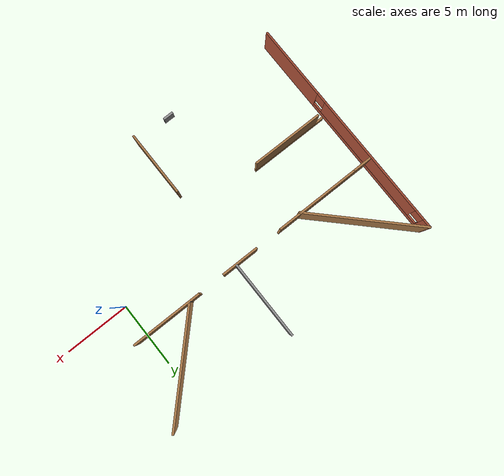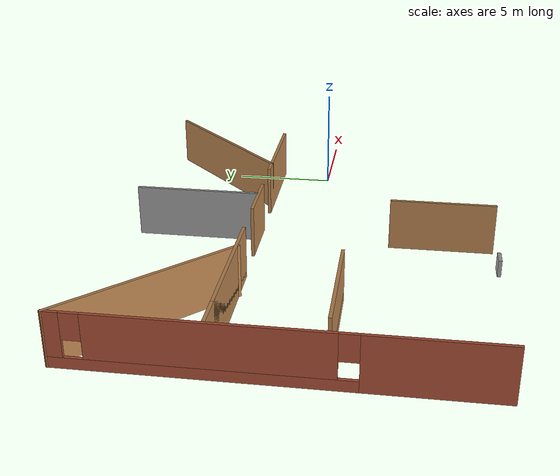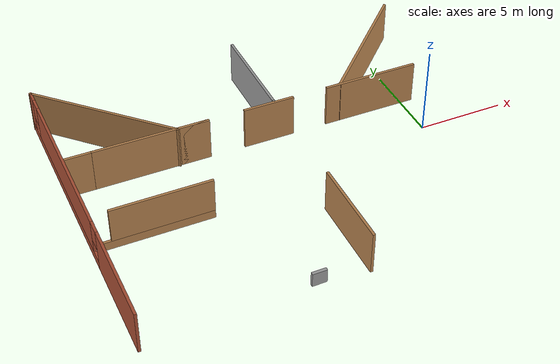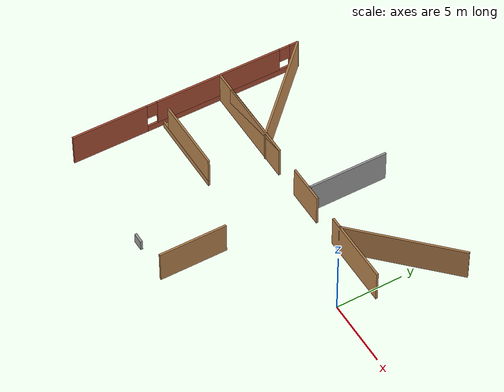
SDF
<sdf version="1.6">
 <model name="mybuilding">
  <link name="Wall_43">
   <pose>-19.7987 0.007562 0 0 -0 1.5708</pose>
   <visual name="Wall_43_Visual_0">
    <pose>-6.02432 0 1.25 0 -0 0</pose>
    <geometry><box><size>5.70136 0.15 2.5</size></box></geometry>
    <material>
     <script><uri>file://media/materials/scripts/gazebo.material</uri><name>Gazebo/Bricks</name></script>
     <ambient>1 1 1 1</ambient>
     <shader type="pixel"/>
     <diffuse>1 1 1 1</diffuse>
     <specular>0.2 0.2 0.2 1</specular>
     <emissive>0 0 0 1</emissive>
    </material>
    <meta><layer>0</layer></meta>
   </visual>
   <visual name="Wall_43_Visual_1">
    <pose>2.85068 0 0.25 0 -0 0</pose>
    <geometry><box><size>12.0486 0.15 0.5</size></box></geometry>
    <material>
     <script><uri>file://media/materials/scripts/gazebo.material</uri><name>Gazebo/Bricks</name></script>
     <ambient>1 1 1 1</ambient>
     <shader type="pixel"/>
     <diffuse>1 1 1 1</diffuse>
     <specular>0.2 0.2 0.2 1</specular>
     <emissive>0 0 0 1</emissive>
    </material>
    <meta><layer>0</layer></meta>
   </visual>
   <visual name="Wall_43_Visual_2">
    <pose>2.47839 0 1.5 0 -0 0</pose>
    <geometry><box><size>9.70406 0.15 2</size></box></geometry>
    <material>
     <script><uri>file://media/materials/scripts/gazebo.material</uri><name>Gazebo/Bricks</name></script>
     <ambient>1 1 1 1</ambient>
     <shader type="pixel"/>
     <diffuse>1 1 1 1</diffuse>
     <specular>0.2 0.2 0.2 1</specular>
     <emissive>0 0 0 1</emissive>
    </material>
    <meta><layer>0</layer></meta>
   </visual>
   <visual name="Wall_43_Visual_3">
    <pose>8.50271 0 1.5 0 -0 0</pose>
    <geometry><box><size>0.744584 0.15 2</size></box></geometry>
    <material>
     <script><uri>file://media/materials/scripts/gazebo.material</uri><name>Gazebo/Bricks</name></script>
     <ambient>1 1 1 1</ambient>
     <shader type="pixel"/>
     <diffuse>1 1 1 1</diffuse>
     <specular>0.2 0.2 0.2 1</specular>
     <emissive>0 0 0 1</emissive>
    </material>
    <meta><layer>0</layer></meta>
   </visual>
   <visual name="Wall_43_Visual_4">
    <pose>-2.77364 0 1.9 0 -0 0</pose>
    <geometry><box><size>0.8 0.15 1.2</size></box></geometry>
    <material>
     <script><uri>file://media/materials/scripts/gazebo.material</uri><name>Gazebo/Bricks</name></script>
     <ambient>1 1 1 1</ambient>
     <shader type="pixel"/>
     <diffuse>1 1 1 1</diffuse>
     <specular>0.2 0.2 0.2 1</specular>
     <emissive>0 0 0 1</emissive>
    </material>
    <meta><layer>0</layer></meta>
   </visual>
   <visual name="Wall_43_Visual_5">
    <pose>7.73042 0 1.9 0 -0 0</pose>
    <geometry><box><size>0.8 0.15 1.2</size></box></geometry>
    <material>
     <script><uri>file://media/materials/scripts/gazebo.material</uri><name>Gazebo/Bricks</name></script>
     <ambient>1 1 1 1</ambient>
     <shader type="pixel"/>
     <diffuse>1 1 1 1</diffuse>
     <specular>0.2 0.2 0.2 1</specular>
     <emissive>0 0 0 1</emissive>
    </material>
    <meta><layer>0</layer></meta>
   </visual>
   <collision name="Wall_43_Collision_0">
    <pose>-6.02432 0 1.25 0 -0 0</pose>
    <geometry><box><size>5.70136 0.15 2.5</size></box></geometry>
    <surface>
     <friction>
      <ode><mu>1</mu><mu2>1</mu2><fdir1>0 0 0</fdir1><slip1>0</slip1><slip2>0</slip2></ode>
      <torsional>
       <coefficient>1</coefficient>
       <patch_radius>0</patch_radius>
       <surface_radius>0</surface_radius>
       <use_patch_radius>1</use_patch_radius>
       <ode><slip>0</slip></ode>
      </torsional>
     </friction>
     <bounce><restitution_coefficient>0</restitution_coefficient><threshold>1e+06</threshold></bounce>
     <contact>
      <collide_without_contact>0</collide_without_contact>
      <collide_without_contact_bitmask>1</collide_without_contact_bitmask>
      <collide_bitmask>1</collide_bitmask>
      <ode>
       <soft_cfm>0</soft_cfm>
       <soft_erp>0.2</soft_erp>
       <kp>1e+13</kp>
       <kd>1</kd>
       <max_vel>0.01</max_vel>
       <min_depth>0</min_depth>
      </ode>
      <bullet>
       <split_impulse>1</split_impulse>
       <split_impulse_penetration_threshold>-0.01</split_impulse_penetration_threshold>
       <soft_cfm>0</soft_cfm>
       <soft_erp>0.2</soft_erp>
       <kp>1e+13</kp>
       <kd>1</kd>
      </bullet>
     </contact>
    </surface>
   </collision>
   <collision name="Wall_43_Collision_1">
    <pose>2.85068 0 0.25 0 -0 0</pose>
    <geometry><box><size>12.0486 0.15 0.5</size></box></geometry>
    <surface>
     <friction>
      <ode><mu>1</mu><mu2>1</mu2><fdir1>0 0 0</fdir1><slip1>0</slip1><slip2>0</slip2></ode>
      <torsional>
       <coefficient>1</coefficient>
       <patch_radius>0</patch_radius>
       <surface_radius>0</surface_radius>
       <use_patch_radius>1</use_patch_radius>
       <ode><slip>0</slip></ode>
      </torsional>
     </friction>
     <bounce><restitution_coefficient>0</restitution_coefficient><threshold>1e+06</threshold></bounce>
     <contact>
      <collide_without_contact>0</collide_without_contact>
      <collide_without_contact_bitmask>1</collide_without_contact_bitmask>
      <collide_bitmask>1</collide_bitmask>
      <ode>
       <soft_cfm>0</soft_cfm>
       <soft_erp>0.2</soft_erp>
       <kp>1e+13</kp>
       <kd>1</kd>
       <max_vel>0.01</max_vel>
       <min_depth>0</min_depth>
      </ode>
      <bullet>
       <split_impulse>1</split_impulse>
       <split_impulse_penetration_threshold>-0.01</split_impulse_penetration_threshold>
       <soft_cfm>0</soft_cfm>
       <soft_erp>0.2</soft_erp>
       <kp>1e+13</kp>
       <kd>1</kd>
      </bullet>
     </contact>
    </surface>
   </collision>
   <collision name="Wall_43_Collision_2">
    <pose>2.47839 0 1.5 0 -0 0</pose>
    <geometry><box><size>9.70406 0.15 2</size></box></geometry>
    <surface>
     <friction>
      <ode><mu>1</mu><mu2>1</mu2><fdir1>0 0 0</fdir1><slip1>0</slip1><slip2>0</slip2></ode>
      <torsional>
       <coefficient>1</coefficient>
       <patch_radius>0</patch_radius>
       <surface_radius>0</surface_radius>
       <use_patch_radius>1</use_patch_radius>
       <ode><slip>0</slip></ode>
      </torsional>
     </friction>
     <bounce><restitution_coefficient>0</restitution_coefficient><threshold>1e+06</threshold></bounce>
     <contact>
      <collide_without_contact>0</collide_without_contact>
      <collide_without_contact_bitmask>1</collide_without_contact_bitmask>
      <collide_bitmask>1</collide_bitmask>
      <ode>
       <soft_cfm>0</soft_cfm>
       <soft_erp>0.2</soft_erp>
       <kp>1e+13</kp>
       <kd>1</kd>
       <max_vel>0.01</max_vel>
       <min_depth>0</min_depth>
      </ode>
      <bullet>
       <split_impulse>1</split_impulse>
       <split_impulse_penetration_threshold>-0.01</split_impulse_penetration_threshold>
       <soft_cfm>0</soft_cfm>
       <soft_erp>0.2</soft_erp>
       <kp>1e+13</kp>
       <kd>1</kd>
      </bullet>
     </contact>
    </surface>
   </collision>
   <collision name="Wall_43_Collision_3">
    <pose>8.50271 0 1.5 0 -0 0</pose>
    <geometry><box><size>0.744584 0.15 2</size></box></geometry>
    <surface>
     <friction>
      <ode><mu>1</mu><mu2>1</mu2><fdir1>0 0 0</fdir1><slip1>0</slip1><slip2>0</slip2></ode>
      <torsional>
       <coefficient>1</coefficient>
       <patch_radius>0</patch_radius>
       <surface_radius>0</surface_radius>
       <use_patch_radius>1</use_patch_radius>
       <ode><slip>0</slip></ode>
      </torsional>
     </friction>
     <bounce><restitution_coefficient>0</restitution_coefficient><threshold>1e+06</threshold></bounce>
     <contact>
      <collide_without_contact>0</collide_without_contact>
      <collide_without_contact_bitmask>1</collide_without_contact_bitmask>
      <collide_bitmask>1</collide_bitmask>
      <ode>
       <soft_cfm>0</soft_cfm>
       <soft_erp>0.2</soft_erp>
       <kp>1e+13</kp>
       <kd>1</kd>
       <max_vel>0.01</max_vel>
       <min_depth>0</min_depth>
      </ode>
      <bullet>
       <split_impulse>1</split_impulse>
       <split_impulse_penetration_threshold>-0.01</split_impulse_penetration_threshold>
       <soft_cfm>0</soft_cfm>
       <soft_erp>0.2</soft_erp>
       <kp>1e+13</kp>
       <kd>1</kd>
      </bullet>
     </contact>
    </surface>
   </collision>
   <collision name="Wall_43_Collision_4">
    <pose>-2.77364 0 1.9 0 -0 0</pose>
    <geometry><box><size>0.8 0.15 1.2</size></box></geometry>
    <surface>
     <friction>
      <ode><mu>1</mu><mu2>1</mu2><fdir1>0 0 0</fdir1><slip1>0</slip1><slip2>0</slip2></ode>
      <torsional>
       <coefficient>1</coefficient>
       <patch_radius>0</patch_radius>
       <surface_radius>0</surface_radius>
       <use_patch_radius>1</use_patch_radius>
       <ode><slip>0</slip></ode>
      </torsional>
     </friction>
     <bounce><restitution_coefficient>0</restitution_coefficient><threshold>1e+06</threshold></bounce>
     <contact>
      <collide_without_contact>0</collide_without_contact>
      <collide_without_contact_bitmask>1</collide_without_contact_bitmask>
      <collide_bitmask>1</collide_bitmask>
      <ode>
       <soft_cfm>0</soft_cfm>
       <soft_erp>0.2</soft_erp>
       <kp>1e+13</kp>
       <kd>1</kd>
       <max_vel>0.01</max_vel>
       <min_depth>0</min_depth>
      </ode>
      <bullet>
       <split_impulse>1</split_impulse>
       <split_impulse_penetration_threshold>-0.01</split_impulse_penetration_threshold>
       <soft_cfm>0</soft_cfm>
       <soft_erp>0.2</soft_erp>
       <kp>1e+13</kp>
       <kd>1</kd>
      </bullet>
     </contact>
    </surface>
   </collision>
   <collision name="Wall_43_Collision_5">
    <pose>7.73042 0 1.9 0 -0 0</pose>
    <geometry><box><size>0.8 0.15 1.2</size></box></geometry>
    <surface>
     <friction>
      <ode><mu>1</mu><mu2>1</mu2><fdir1>0 0 0</fdir1><slip1>0</slip1><slip2>0</slip2></ode>
      <torsional>
       <coefficient>1</coefficient>
       <patch_radius>0</patch_radius>
       <surface_radius>0</surface_radius>
       <use_patch_radius>1</use_patch_radius>
       <ode><slip>0</slip></ode>
      </torsional>
     </friction>
     <bounce><restitution_coefficient>0</restitution_coefficient><threshold>1e+06</threshold></bounce>
     <contact>
      <collide_without_contact>0</collide_without_contact>
      <collide_without_contact_bitmask>1</collide_without_contact_bitmask>
      <collide_bitmask>1</collide_bitmask>
      <ode>
       <soft_cfm>0</soft_cfm>
       <soft_erp>0.2</soft_erp>
       <kp>1e+13</kp>
       <kd>1</kd>
       <max_vel>0.01</max_vel>
       <min_depth>0</min_depth>
      </ode>
      <bullet>
       <split_impulse>1</split_impulse>
       <split_impulse_penetration_threshold>-0.01</split_impulse_penetration_threshold>
       <soft_cfm>0</soft_cfm>
       <soft_erp>0.2</soft_erp>
       <kp>1e+13</kp>
       <kd>1</kd>
      </bullet>
     </contact>
    </surface>
   </collision>
  </link>
  <link name="Wall_59">
   <pose>-7.88431 -6.2675 0 0 0 -1.5708</pose>
   <visual name="Wall_59_Visual">
    <pose>0 0 1.25 0 -0 0</pose>
    <geometry><box><size>5 0.15 2.5</size></box></geometry>
    <material>
     <script><uri>file://media/materials/scripts/gazebo.material</uri><name>Gazebo/Wood</name></script>
     <ambient>1 1 1 1</ambient>
     <shader type="pixel"/>
     <diffuse>1 1 1 1</diffuse>
     <specular>0.2 0.2 0.2 1</specular>
     <emissive>0 0 0 1</emissive>
    </material>
    <meta><layer>0</layer></meta>
   </visual>
   <collision name="Wall_59_Collision">
    <pose>0 0 1.25 0 -0 0</pose>
    <geometry><box><size>5 0.15 2.5</size></box></geometry>
    <surface>
     <friction>
      <ode><mu>1</mu><mu2>1</mu2><fdir1>0 0 0</fdir1><slip1>0</slip1><slip2>0</slip2></ode>
      <torsional>
       <coefficient>1</coefficient>
       <patch_radius>0</patch_radius>
       <surface_radius>0</surface_radius>
       <use_patch_radius>1</use_patch_radius>
       <ode><slip>0</slip></ode>
      </torsional>
     </friction>
     <bounce><restitution_coefficient>0</restitution_coefficient><threshold>1e+06</threshold></bounce>
     <contact>
      <collide_without_contact>0</collide_without_contact>
      <collide_without_contact_bitmask>1</collide_without_contact_bitmask>
      <collide_bitmask>1</collide_bitmask>
      <ode>
       <soft_cfm>0</soft_cfm>
       <soft_erp>0.2</soft_erp>
       <kp>1e+13</kp>
       <kd>1</kd>
       <max_vel>0.01</max_vel>
       <min_depth>0</min_depth>
      </ode>
      <bullet>
       <split_impulse>1</split_impulse>
       <split_impulse_penetration_threshold>-0.01</split_impulse_penetration_threshold>
       <soft_cfm>0</soft_cfm>
       <soft_erp>0.2</soft_erp>
       <kp>1e+13</kp>
       <kd>1</kd>
      </bullet>
     </contact>
    </surface>
   </collision>
  </link>
  <link name="Wall_61">
   <pose>-8.92552 2.61359 0 0 -0 0</pose>
   <visual name="Wall_61_Visual_0">
    <pose>-6.84274 0 1.25 0 -0 0</pose>
    <geometry><box><size>8.06453 0.15 2.5</size></box></geometry>
    <material>
     <script><uri>file://media/materials/scripts/gazebo.material</uri><name>Gazebo/Wood</name></script>
     <ambient>1 1 1 1</ambient>
     <shader type="pixel"/>
     <diffuse>1 1 1 1</diffuse>
     <specular>0.2 0.2 0.2 1</specular>
     <emissive>0 0 0 1</emissive>
    </material>
    <meta><layer>0</layer></meta>
   </visual>
   <visual name="Wall_61_Visual_1">
    <pose>-6.07805 0 1.25 0 -0 0</pose>
    <geometry><box><size>6.53515 0.15 2.5</size></box></geometry>
    <material>
     <script><uri>file://media/materials/scripts/gazebo.material</uri><name>Gazebo/Wood</name></script>
     <ambient>1 1 1 1</ambient>
     <shader type="pixel"/>
     <diffuse>1 1 1 1</diffuse>
     <specular>0.2 0.2 0.2 1</specular>
     <emissive>0 0 0 1</emissive>
    </material>
    <meta><layer>0</layer></meta>
   </visual>
   <visual name="Wall_61_Visual_2">
    <pose>0.654036 0 1.25 0 -0 0</pose>
    <geometry><box><size>2.92902 0.15 2.5</size></box></geometry>
    <material>
     <script><uri>file://media/materials/scripts/gazebo.material</uri><name>Gazebo/Wood</name></script>
     <ambient>1 1 1 1</ambient>
     <shader type="pixel"/>
     <diffuse>1 1 1 1</diffuse>
     <specular>0.2 0.2 0.2 1</specular>
     <emissive>0 0 0 1</emissive>
    </material>
    <meta><layer>0</layer></meta>
   </visual>
   <visual name="Wall_61_Visual_3">
    <pose>6.87507 0 1.25 0 -0 0</pose>
    <geometry><box><size>5.51304 0.15 2.5</size></box></geometry>
    <material>
     <script><uri>file://media/materials/scripts/gazebo.material</uri><name>Gazebo/Wood</name></script>
     <ambient>1 1 1 1</ambient>
     <shader type="pixel"/>
     <diffuse>1 1 1 1</diffuse>
     <specular>0.2 0.2 0.2 1</specular>
     <emissive>0 0 0 1</emissive>
    </material>
    <meta><layer>0</layer></meta>
   </visual>
   <collision name="Wall_61_Collision_1">
    <pose>-6.07805 0 1.25 0 -0 0</pose>
    <geometry><box><size>6.53515 0.15 2.5</size></box></geometry>
    <surface>
     <friction>
      <ode><mu>1</mu><mu2>1</mu2><fdir1>0 0 0</fdir1><slip1>0</slip1><slip2>0</slip2></ode>
      <torsional>
       <coefficient>1</coefficient>
       <patch_radius>0</patch_radius>
       <surface_radius>0</surface_radius>
       <use_patch_radius>1</use_patch_radius>
       <ode><slip>0</slip></ode>
      </torsional>
     </friction>
     <bounce><restitution_coefficient>0</restitution_coefficient><threshold>1e+06</threshold></bounce>
     <contact>
      <collide_without_contact>0</collide_without_contact>
      <collide_without_contact_bitmask>1</collide_without_contact_bitmask>
      <collide_bitmask>1</collide_bitmask>
      <ode>
       <soft_cfm>0</soft_cfm>
       <soft_erp>0.2</soft_erp>
       <kp>1e+13</kp>
       <kd>1</kd>
       <max_vel>0.01</max_vel>
       <min_depth>0</min_depth>
      </ode>
      <bullet>
       <split_impulse>1</split_impulse>
       <split_impulse_penetration_threshold>-0.01</split_impulse_penetration_threshold>
       <soft_cfm>0</soft_cfm>
       <soft_erp>0.2</soft_erp>
       <kp>1e+13</kp>
       <kd>1</kd>
      </bullet>
     </contact>
    </surface>
   </collision>
   <collision name="Wall_61_Collision_0">
    <pose>-6.84274 0 1.25 0 -0 0</pose>
    <geometry><box><size>8.06453 0.15 2.5</size></box></geometry>
    <surface>
     <friction>
      <ode><mu>1</mu><mu2>1</mu2><fdir1>0 0 0</fdir1><slip1>0</slip1><slip2>0</slip2></ode>
      <torsional>
       <coefficient>1</coefficient>
       <patch_radius>0</patch_radius>
       <surface_radius>0</surface_radius>
       <use_patch_radius>1</use_patch_radius>
       <ode><slip>0</slip></ode>
      </torsional>
     </friction>
     <bounce><restitution_coefficient>0</restitution_coefficient><threshold>1e+06</threshold></bounce>
     <contact>
      <collide_without_contact>0</collide_without_contact>
      <collide_without_contact_bitmask>1</collide_without_contact_bitmask>
      <collide_bitmask>1</collide_bitmask>
      <ode>
       <soft_cfm>0</soft_cfm>
       <soft_erp>0.2</soft_erp>
       <kp>1e+13</kp>
       <kd>1</kd>
       <max_vel>0.01</max_vel>
       <min_depth>0</min_depth>
      </ode>
      <bullet>
       <split_impulse>1</split_impulse>
       <split_impulse_penetration_threshold>-0.01</split_impulse_penetration_threshold>
       <soft_cfm>0</soft_cfm>
       <soft_erp>0.2</soft_erp>
       <kp>1e+13</kp>
       <kd>1</kd>
      </bullet>
     </contact>
    </surface>
   </collision>
   <collision name="Wall_61_Collision_2">
    <pose>0.654036 0 1.25 0 -0 0</pose>
    <geometry><box><size>2.92902 0.15 2.5</size></box></geometry>
    <surface>
     <friction>
      <ode><mu>1</mu><mu2>1</mu2><fdir1>0 0 0</fdir1><slip1>0</slip1><slip2>0</slip2></ode>
      <torsional>
       <coefficient>1</coefficient>
       <patch_radius>0</patch_radius>
       <surface_radius>0</surface_radius>
       <use_patch_radius>1</use_patch_radius>
       <ode><slip>0</slip></ode>
      </torsional>
     </friction>
     <bounce><restitution_coefficient>0</restitution_coefficient><threshold>1e+06</threshold></bounce>
     <contact>
      <collide_without_contact>0</collide_without_contact>
      <collide_without_contact_bitmask>1</collide_without_contact_bitmask>
      <collide_bitmask>1</collide_bitmask>
      <ode>
       <soft_cfm>0</soft_cfm>
       <soft_erp>0.2</soft_erp>
       <kp>1e+13</kp>
       <kd>1</kd>
       <max_vel>0.01</max_vel>
       <min_depth>0</min_depth>
      </ode>
      <bullet>
       <split_impulse>1</split_impulse>
       <split_impulse_penetration_threshold>-0.01</split_impulse_penetration_threshold>
       <soft_cfm>0</soft_cfm>
       <soft_erp>0.2</soft_erp>
       <kp>1e+13</kp>
       <kd>1</kd>
      </bullet>
     </contact>
    </surface>
   </collision>
   <collision name="Wall_61_Collision_3">
    <pose>6.87507 0 1.25 0 -0 0</pose>
    <geometry><box><size>5.51304 0.15 2.5</size></box></geometry>
    <surface>
     <friction>
      <ode><mu>1</mu><mu2>1</mu2><fdir1>0 0 0</fdir1><slip1>0</slip1><slip2>0</slip2></ode>
      <torsional>
       <coefficient>1</coefficient>
       <patch_radius>0</patch_radius>
       <surface_radius>0</surface_radius>
       <use_patch_radius>1</use_patch_radius>
       <ode><slip>0</slip></ode>
      </torsional>
     </friction>
     <bounce><restitution_coefficient>0</restitution_coefficient><threshold>1e+06</threshold></bounce>
     <contact>
      <collide_without_contact>0</collide_without_contact>
      <collide_without_contact_bitmask>1</collide_without_contact_bitmask>
      <collide_bitmask>1</collide_bitmask>
      <ode>
       <soft_cfm>0</soft_cfm>
       <soft_erp>0.2</soft_erp>
       <kp>1e+13</kp>
       <kd>1</kd>
       <max_vel>0.01</max_vel>
       <min_depth>0</min_depth>
      </ode>
      <bullet>
       <split_impulse>1</split_impulse>
       <split_impulse_penetration_threshold>-0.01</split_impulse_penetration_threshold>
       <soft_cfm>0</soft_cfm>
       <soft_erp>0.2</soft_erp>
       <kp>1e+13</kp>
       <kd>1</kd>
      </bullet>
     </contact>
    </surface>
   </collision>
  </link>
  <link name="Wall_64">
   <pose>-16.6698 5.67861 0 0 0 -0.785398</pose>
   <visual name="Wall_64_Visual">
    <pose>0 0 1.25 0 -0 0</pose>
    <geometry><box><size>9 0.15 2.5</size></box></geometry>
    <material>
     <script><uri>file://media/materials/scripts/gazebo.material</uri><name>Gazebo/Wood</name></script>
     <ambient>1 1 1 1</ambient>
     <shader type="pixel"/>
     <diffuse>1 1 1 1</diffuse>
     <specular>0.2 0.2 0.2 1</specular>
     <emissive>0 0 0 1</emissive>
    </material>
    <meta><layer>0</layer></meta>
   </visual>
   <collision name="Wall_64_Collision">
    <pose>0 0 1.25 0 -0 0</pose>
    <geometry><box><size>9 0.15 2.5</size></box></geometry>
    <surface>
     <friction>
      <ode><mu>1</mu><mu2>1</mu2><fdir1>0 0 0</fdir1><slip1>0</slip1><slip2>0</slip2></ode>
      <torsional>
       <coefficient>1</coefficient>
       <patch_radius>0</patch_radius>
       <surface_radius>0</surface_radius>
       <use_patch_radius>1</use_patch_radius>
       <ode><slip>0</slip></ode>
      </torsional>
     </friction>
     <bounce><restitution_coefficient>0</restitution_coefficient><threshold>1e+06</threshold></bounce>
     <contact>
      <collide_without_contact>0</collide_without_contact>
      <collide_without_contact_bitmask>1</collide_without_contact_bitmask>
      <collide_bitmask>1</collide_bitmask>
      <ode>
       <soft_cfm>0</soft_cfm>
       <soft_erp>0.2</soft_erp>
       <kp>1e+13</kp>
       <kd>1</kd>
       <max_vel>0.01</max_vel>
       <min_depth>0</min_depth>
      </ode>
      <bullet>
       <split_impulse>1</split_impulse>
       <split_impulse_penetration_threshold>-0.01</split_impulse_penetration_threshold>
       <soft_cfm>0</soft_cfm>
       <soft_erp>0.2</soft_erp>
       <kp>1e+13</kp>
       <kd>1</kd>
      </bullet>
     </contact>
    </surface>
   </collision>
  </link>
  <link name="Wall_70">
   <pose>-0.903867 5.67115 0 0 0 -2.35619</pose>
   <visual name="Wall_70_Visual">
    <pose>0 0 1.25 0 -0 0</pose>
    <geometry><box><size>8.75 0.15 2.5</size></box></geometry>
    <material>
     <script><uri>file://media/materials/scripts/gazebo.material</uri><name>Gazebo/Wood</name></script>
     <ambient>1 1 1 1</ambient>
     <shader type="pixel"/>
     <diffuse>1 1 1 1</diffuse>
     <specular>0.2 0.2 0.2 1</specular>
     <emissive>0 0 0 1</emissive>
    </material>
    <meta><layer>0</layer></meta>
   </visual>
   <collision name="Wall_70_Collision">
    <pose>0 0 1.25 0 -0 0</pose>
    <geometry><box><size>8.75 0.15 2.5</size></box></geometry>
    <surface>
     <friction>
      <ode><mu>1</mu><mu2>1</mu2><fdir1>0 0 0</fdir1><slip1>0</slip1><slip2>0</slip2></ode>
      <torsional>
       <coefficient>1</coefficient>
       <patch_radius>0</patch_radius>
       <surface_radius>0</surface_radius>
       <use_patch_radius>1</use_patch_radius>
       <ode><slip>0</slip></ode>
      </torsional>
     </friction>
     <bounce><restitution_coefficient>0</restitution_coefficient><threshold>1e+06</threshold></bounce>
     <contact>
      <collide_without_contact>0</collide_without_contact>
      <collide_without_contact_bitmask>1</collide_without_contact_bitmask>
      <collide_bitmask>1</collide_bitmask>
      <ode>
       <soft_cfm>0</soft_cfm>
       <soft_erp>0.2</soft_erp>
       <kp>1e+13</kp>
       <kd>1</kd>
       <max_vel>0.01</max_vel>
       <min_depth>0</min_depth>
      </ode>
      <bullet>
       <split_impulse>1</split_impulse>
       <split_impulse_penetration_threshold>-0.01</split_impulse_penetration_threshold>
       <soft_cfm>0</soft_cfm>
       <soft_erp>0.2</soft_erp>
       <kp>1e+13</kp>
       <kd>1</kd>
      </bullet>
     </contact>
    </surface>
   </collision>
  </link>
  <link name="Wall_71">
   <pose>-3.93943 2.63059 0 0 -0 0</pose>
   <visual name="Wall_71_Visual">
    <pose>0 0 1.25 0 -0 0</pose>
    <geometry><box><size>0.16 0.15 2.5</size></box></geometry>
    <material>
     <script><uri>file://media/materials/scripts/gazebo.material</uri><name>Gazebo/Grey</name></script>
     <ambient>1 1 1 1</ambient>
     <shader type="pixel"/>
     <diffuse>0.7 0.7 0.7 1</diffuse>
     <specular>0.01 0.01 0.01 1</specular>
     <emissive>0 0 0 1</emissive>
    </material>
    <meta><layer>0</layer></meta>
   </visual>
   <collision name="Wall_71_Collision">
    <pose>0 0 1.25 0 -0 0</pose>
    <geometry><box><size>0.16 0.15 2.5</size></box></geometry>
    <surface>
     <friction>
      <ode><mu>1</mu><mu2>1</mu2><fdir1>0 0 0</fdir1><slip1>0</slip1><slip2>0</slip2></ode>
      <torsional>
       <coefficient>1</coefficient>
       <patch_radius>0</patch_radius>
       <surface_radius>0</surface_radius>
       <use_patch_radius>1</use_patch_radius>
       <ode><slip>0</slip></ode>
      </torsional>
     </friction>
     <bounce><restitution_coefficient>0</restitution_coefficient><threshold>1e+06</threshold></bounce>
     <contact>
      <collide_without_contact>0</collide_without_contact>
      <collide_without_contact_bitmask>1</collide_without_contact_bitmask>
      <collide_bitmask>1</collide_bitmask>
      <ode>
       <soft_cfm>0</soft_cfm>
       <soft_erp>0.2</soft_erp>
       <kp>1e+13</kp>
       <kd>1</kd>
       <max_vel>0.01</max_vel>
       <min_depth>0</min_depth>
      </ode>
      <bullet>
       <split_impulse>1</split_impulse>
       <split_impulse_penetration_threshold>-0.01</split_impulse_penetration_threshold>
       <soft_cfm>0</soft_cfm>
       <soft_erp>0.2</soft_erp>
       <kp>1e+13</kp>
       <kd>1</kd>
      </bullet>
     </contact>
    </surface>
   </collision>
  </link>
  <link name="Wall_73">
   <pose>-7.93758 5.64679 0 0 0 -1.5708</pose>
   <visual name="Wall_73_Visual">
    <pose>0 0 1.25 0 -0 0</pose>
    <geometry><box><size>6 0.15 2.5</size></box></geometry>
    <material>
     <script><uri>file://media/materials/scripts/gazebo.material</uri><name>Gazebo/Grey</name></script>
     <ambient>1 1 1 1</ambient>
     <shader type="pixel"/>
     <diffuse>0.7 0.7 0.7 1</diffuse>
     <specular>0.01 0.01 0.01 1</specular>
     <emissive>0 0 0 1</emissive>
    </material>
    <meta><layer>0</layer></meta>
   </visual>
   <collision name="Wall_73_Collision">
    <pose>0 0 1.25 0 -0 0</pose>
    <geometry><box><size>6 0.15 2.5</size></box></geometry>
    <surface>
     <friction>
      <ode><mu>1</mu><mu2>1</mu2><fdir1>0 0 0</fdir1><slip1>0</slip1><slip2>0</slip2></ode>
      <torsional>
       <coefficient>1</coefficient>
       <patch_radius>0</patch_radius>
       <surface_radius>0</surface_radius>
       <use_patch_radius>1</use_patch_radius>
       <ode><slip>0</slip></ode>
      </torsional>
     </friction>
     <bounce><restitution_coefficient>0</restitution_coefficient><threshold>1e+06</threshold></bounce>
     <contact>
      <collide_without_contact>0</collide_without_contact>
      <collide_without_contact_bitmask>1</collide_without_contact_bitmask>
      <collide_bitmask>1</collide_bitmask>
      <ode>
       <soft_cfm>0</soft_cfm>
       <soft_erp>0.2</soft_erp>
       <kp>1e+13</kp>
       <kd>1</kd>
       <max_vel>0.01</max_vel>
       <min_depth>0</min_depth>
      </ode>
      <bullet>
       <split_impulse>1</split_impulse>
       <split_impulse_penetration_threshold>-0.01</split_impulse_penetration_threshold>
       <soft_cfm>0</soft_cfm>
       <soft_erp>0.2</soft_erp>
       <kp>1e+13</kp>
       <kd>1</kd>
      </bullet>
     </contact>
    </surface>
   </collision>
  </link>
  <link name="Wall_74">
   <pose>-7.93258 2.72179 0 0 -0 0</pose>
   <visual name="Wall_74_Visual">
    <pose>0 0 1.25 0 -0 0</pose>
    <geometry><box><size>0.16 0.15 2.5</size></box></geometry>
    <material>
     <script><uri>file://media/materials/scripts/gazebo.material</uri><name>Gazebo/Grey</name></script>
     <ambient>1 1 1 1</ambient>
     <shader type="pixel"/>
     <diffuse>0.7 0.7 0.7 1</diffuse>
     <specular>0.01 0.01 0.01 1</specular>
     <emissive>0 0 0 1</emissive>
    </material>
    <meta><layer>0</layer></meta>
   </visual>
   <collision name="Wall_74_Collision">
    <pose>0 0 1.25 0 -0 0</pose>
    <geometry><box><size>0.16 0.15 2.5</size></box></geometry>
    <surface>
     <friction>
      <ode><mu>1</mu><mu2>1</mu2><fdir1>0 0 0</fdir1><slip1>0</slip1><slip2>0</slip2></ode>
      <torsional>
       <coefficient>1</coefficient>
       <patch_radius>0</patch_radius>
       <surface_radius>0</surface_radius>
       <use_patch_radius>1</use_patch_radius>
       <ode><slip>0</slip></ode>
      </torsional>
     </friction>
     <bounce><restitution_coefficient>0</restitution_coefficient><threshold>1e+06</threshold></bounce>
     <contact>
      <collide_without_contact>0</collide_without_contact>
      <collide_without_contact_bitmask>1</collide_without_contact_bitmask>
      <collide_bitmask>1</collide_bitmask>
      <ode>
       <soft_cfm>0</soft_cfm>
       <soft_erp>0.2</soft_erp>
       <kp>1e+13</kp>
       <kd>1</kd>
       <max_vel>0.01</max_vel>
       <min_depth>0</min_depth>
      </ode>
      <bullet>
       <split_impulse>1</split_impulse>
       <split_impulse_penetration_threshold>-0.01</split_impulse_penetration_threshold>
       <soft_cfm>0</soft_cfm>
       <soft_erp>0.2</soft_erp>
       <kp>1e+13</kp>
       <kd>1</kd>
      </bullet>
     </contact>
    </surface>
   </collision>
  </link>
  <link name="Wall_76">
   <pose>-16.444 -1.96608 0 0 -0 0</pose>
   <visual name="Wall_76_Visual_0">
    <pose>0 0 0.25 0 -0 0</pose>
    <geometry><box><size>6.25 0.15 0.5</size></box></geometry>
    <material>
     <script><uri>file://media/materials/scripts/gazebo.material</uri><name>Gazebo/Wood</name></script>
     <ambient>0.435294 0.796078 0.67451 1</ambient>
     <shader type="pixel"/>
     <diffuse>1 1 1 1</diffuse>
     <specular>0.2 0.2 0.2 1</specular>
     <emissive>0 0 0 1</emissive>
    </material>
    <meta><layer>0</layer></meta>
   </visual>
   <visual name="Wall_76_Visual_1">
    <pose>0.3575 0 1.5 0 -0 0</pose>
    <geometry><box><size>5.535 0.15 2</size></box></geometry>
    <material>
     <script><uri>file://media/materials/scripts/gazebo.material</uri><name>Gazebo/Wood</name></script>
     <ambient>0.435294 0.796078 0.67451 1</ambient>
     <shader type="pixel"/>
     <diffuse>1 1 1 1</diffuse>
     <specular>0.2 0.2 0.2 1</specular>
     <emissive>0 0 0 1</emissive>
    </material>
    <meta><layer>0</layer></meta>
   </visual>
   <collision name="Wall_76_Collision_0">
    <pose>0 0 0.25 0 -0 0</pose>
    <geometry><box><size>6.25 0.15 0.5</size></box></geometry>
    <surface>
     <friction>
      <ode><mu>1</mu><mu2>1</mu2><fdir1>0 0 0</fdir1><slip1>0</slip1><slip2>0</slip2></ode>
      <torsional>
       <coefficient>1</coefficient>
       <patch_radius>0</patch_radius>
       <surface_radius>0</surface_radius>
       <use_patch_radius>1</use_patch_radius>
       <ode><slip>0</slip></ode>
      </torsional>
     </friction>
     <bounce><restitution_coefficient>0</restitution_coefficient><threshold>1e+06</threshold></bounce>
     <contact>
      <collide_without_contact>0</collide_without_contact>
      <collide_without_contact_bitmask>1</collide_without_contact_bitmask>
      <collide_bitmask>1</collide_bitmask>
      <ode>
       <soft_cfm>0</soft_cfm>
       <soft_erp>0.2</soft_erp>
       <kp>1e+13</kp>
       <kd>1</kd>
       <max_vel>0.01</max_vel>
       <min_depth>0</min_depth>
      </ode>
      <bullet>
       <split_impulse>1</split_impulse>
       <split_impulse_penetration_threshold>-0.01</split_impulse_penetration_threshold>
       <soft_cfm>0</soft_cfm>
       <soft_erp>0.2</soft_erp>
       <kp>1e+13</kp>
       <kd>1</kd>
      </bullet>
     </contact>
    </surface>
   </collision>
   <collision name="Wall_76_Collision_1">
    <pose>0.3575 0 1.5 0 -0 0</pose>
    <geometry><box><size>5.535 0.15 2</size></box></geometry>
    <surface>
     <friction>
      <ode><mu>1</mu><mu2>1</mu2><fdir1>0 0 0</fdir1><slip1>0</slip1><slip2>0</slip2></ode>
      <torsional>
       <coefficient>1</coefficient>
       <patch_radius>0</patch_radius>
       <surface_radius>0</surface_radius>
       <use_patch_radius>1</use_patch_radius>
       <ode><slip>0</slip></ode>
      </torsional>
     </friction>
     <bounce><restitution_coefficient>0</restitution_coefficient><threshold>1e+06</threshold></bounce>
     <contact>
      <collide_without_contact>0</collide_without_contact>
      <collide_without_contact_bitmask>1</collide_without_contact_bitmask>
      <collide_bitmask>1</collide_bitmask>
      <ode>
       <soft_cfm>0</soft_cfm>
       <soft_erp>0.2</soft_erp>
       <kp>1e+13</kp>
       <kd>1</kd>
       <max_vel>0.01</max_vel>
       <min_depth>0</min_depth>
      </ode>
      <bullet>
       <split_impulse>1</split_impulse>
       <split_impulse_penetration_threshold>-0.01</split_impulse_penetration_threshold>
       <soft_cfm>0</soft_cfm>
       <soft_erp>0.2</soft_erp>
       <kp>1e+13</kp>
       <kd>1</kd>
      </bullet>
     </contact>
    </surface>
   </collision>
  </link>
  <link name="Window_1">
   <pose>-10.755 -8.79074 0.5 0 -0 0</pose>
   <visual name="Window_1_Visual">
    <pose>0 0 0.4 0 -0 0</pose>
    <geometry><box><size>0.8 0.17 0.8</size></box></geometry>
    <material>
     <script><uri>file://media/materials/scripts/gazebo.material</uri><name>Gazebo/Grey</name></script>
     <shader type="pixel"/>
     <ambient>0.3 0.3 0.3 1</ambient>
     <diffuse>0.7 0.7 0.7 1</diffuse>
     <specular>0.01 0.01 0.01 1</specular>
     <emissive>0 0 0 1</emissive>
    </material>
   </visual>
   <collision name="Window_1_Collision">
    <pose>0 0 0.4 0 -0 0</pose>
    <geometry><box><size>0.8 0.17 0.8</size></box></geometry>
    <surface>
     <friction>
      <ode><mu>1</mu><mu2>1</mu2><fdir1>0 0 0</fdir1><slip1>0</slip1><slip2>0</slip2></ode>
      <torsional>
       <coefficient>1</coefficient>
       <patch_radius>0</patch_radius>
       <surface_radius>0</surface_radius>
       <use_patch_radius>1</use_patch_radius>
       <ode><slip>0</slip></ode>
      </torsional>
     </friction>
     <bounce><restitution_coefficient>0</restitution_coefficient><threshold>1e+06</threshold></bounce>
     <contact>
      <collide_without_contact>0</collide_without_contact>
      <collide_without_contact_bitmask>1</collide_without_contact_bitmask>
      <collide_bitmask>1</collide_bitmask>
      <ode>
       <soft_cfm>0</soft_cfm>
       <soft_erp>0.2</soft_erp>
       <kp>1e+13</kp>
       <kd>1</kd>
       <max_vel>0.01</max_vel>
       <min_depth>0</min_depth>
      </ode>
      <bullet>
       <split_impulse>1</split_impulse>
       <split_impulse_penetration_threshold>-0.01</split_impulse_penetration_threshold>
       <soft_cfm>0</soft_cfm>
       <soft_erp>0.2</soft_erp>
       <kp>1e+13</kp>
       <kd>1</kd>
      </bullet>
     </contact>
    </surface>
   </collision>
  </link>
  <static>1</static>
 </model>
</sdf>
